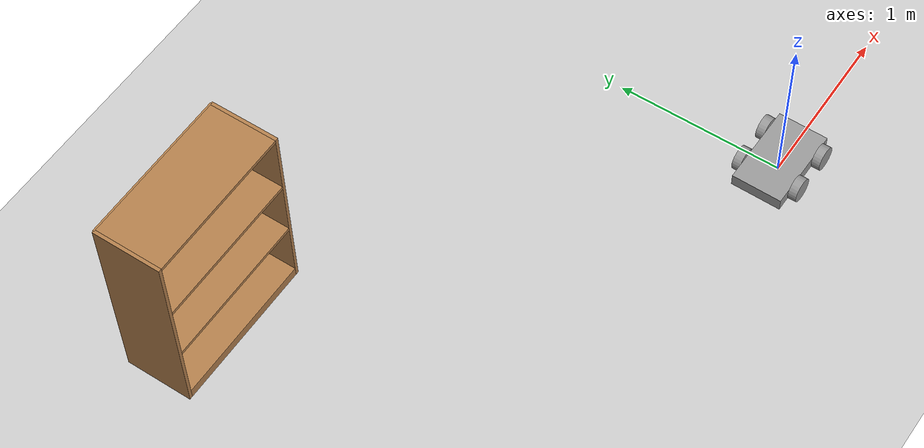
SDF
<sdf version="1.6">
 <world name="default">
  <model name="ground_plane">
   <static>1</static>
   <link name="link">
    <collision name="collision">
     <geometry><plane><normal>0 0 1</normal><size>100 100</size></plane></geometry>
     <surface><friction><ode><mu>100</mu><mu2>50</mu2></ode></friction></surface>
    </collision>
    <visual name="visual">
     <cast_shadows>0</cast_shadows>
     <geometry><plane><normal>0 0 1</normal><size>100 100</size></plane></geometry>
     <material>
      <script><uri>file://media/materials/scripts/gazebo.material</uri><name>Gazebo/Grey</name></script>
     </material>
    </visual>
   </link>
  </model>
  <model name="fourwheelrobot">
   <link name="link_0">
    <pose>-0.025 0.182607 0.07 0 -0 0</pose>
    <inertial>
     <mass>1</mass>
     <inertia>
      <ixx>0.166667</ixx>
      <ixy>0</ixy>
      <ixz>0</ixz>
      <iyy>0.166667</iyy>
      <iyz>0</iyz>
      <izz>0.166667</izz>
     </inertia>
    </inertial>
    <visual name="visual">
     <geometry><box><size>0.5 0.3 0.075</size></box></geometry>
     <material>
      <lighting>1</lighting>
      <script><uri>file://media/materials/scripts/gazebo.material</uri><name>Gazebo/Grey</name></script>
      <shader type="pixel"><normal_map>__default__</normal_map></shader>
      <ambient>0.3 0.3 0.3 1</ambient>
      <diffuse>0.7 0.7 0.7 1</diffuse>
      <specular>0.01 0.01 0.01 1</specular>
      <emissive>0 0 0 1</emissive>
     </material>
    </visual>
    <collision name="collision">
     <geometry><box><size>0.5 0.3 0.075</size></box></geometry>
     <surface>
      <friction>
       <ode><mu>1</mu><mu2>1</mu2><fdir1>0 0 0</fdir1><slip1>0</slip1><slip2>0</slip2></ode>
       <torsional>
        <coefficient>1</coefficient>
        <patch_radius>0</patch_radius>
        <surface_radius>0</surface_radius>
        <use_patch_radius>1</use_patch_radius>
        <ode><slip>0</slip></ode>
       </torsional>
      </friction>
      <bounce><restitution_coefficient>0</restitution_coefficient><threshold>1e+06</threshold></bounce>
      <contact>
       <collide_without_contact>0</collide_without_contact>
       <collide_without_contact_bitmask>1</collide_without_contact_bitmask>
       <collide_bitmask>1</collide_bitmask>
       <ode>
        <soft_cfm>0</soft_cfm>
        <soft_erp>0.2</soft_erp>
        <kp>1e+13</kp>
        <kd>1</kd>
        <max_vel>0.01</max_vel>
        <min_depth>0</min_depth>
       </ode>
       <bullet>
        <split_impulse>1</split_impulse>
        <split_impulse_penetration_threshold>-0.01</split_impulse_penetration_threshold>
        <soft_cfm>0</soft_cfm>
        <soft_erp>0.2</soft_erp>
        <kp>1e+13</kp>
        <kd>1</kd>
       </bullet>
      </contact>
     </surface>
    </collision>
   </link>
   <link name="link_1">
    <pose>0.125 0.007594 0.07 1.5707 -0 0</pose>
    <inertial>
     <mass>1</mass>
     <inertia><ixx>0.145833</ixx><ixy>0</ixy><ixz>0</ixz><iyy>0.145833</iyy><iyz>0</iyz><izz>0.125</izz></inertia>
    </inertial>
    <visual name="visual">
     <geometry><cylinder><radius>0.07</radius><length>0.05</length></cylinder></geometry>
     <material>
      <lighting>1</lighting>
      <script><uri>file://media/materials/scripts/gazebo.material</uri><name>Gazebo/Grey</name></script>
      <shader type="pixel"><normal_map>__default__</normal_map></shader>
      <ambient>0.3 0.3 0.3 1</ambient>
      <diffuse>0.7 0.7 0.7 1</diffuse>
      <specular>0.01 0.01 0.01 1</specular>
      <emissive>0 0 0 1</emissive>
     </material>
    </visual>
    <collision name="collision">
     <geometry><cylinder><radius>0.07</radius><length>0.05</length></cylinder></geometry>
     <surface>
      <friction>
       <ode><mu>1</mu><mu2>1</mu2><fdir1>0 0 0</fdir1><slip1>0</slip1><slip2>0</slip2></ode>
       <torsional>
        <coefficient>1</coefficient>
        <patch_radius>0</patch_radius>
        <surface_radius>0</surface_radius>
        <use_patch_radius>1</use_patch_radius>
        <ode><slip>0</slip></ode>
       </torsional>
      </friction>
      <bounce><restitution_coefficient>0</restitution_coefficient><threshold>1e+06</threshold></bounce>
      <contact>
       <collide_without_contact>0</collide_without_contact>
       <collide_without_contact_bitmask>1</collide_without_contact_bitmask>
       <collide_bitmask>1</collide_bitmask>
       <ode>
        <soft_cfm>0</soft_cfm>
        <soft_erp>0.2</soft_erp>
        <kp>1e+13</kp>
        <kd>1</kd>
        <max_vel>0.01</max_vel>
        <min_depth>0</min_depth>
       </ode>
       <bullet>
        <split_impulse>1</split_impulse>
        <split_impulse_penetration_threshold>-0.01</split_impulse_penetration_threshold>
        <soft_cfm>0</soft_cfm>
        <soft_erp>0.2</soft_erp>
        <kp>1e+13</kp>
        <kd>1</kd>
       </bullet>
      </contact>
     </surface>
    </collision>
   </link>
   <link name="link_1_clone">
    <pose>-0.125 0.0076 0.07 1.5707 -0 0</pose>
    <inertial>
     <mass>1</mass>
     <inertia><ixx>0.145833</ixx><ixy>0</ixy><ixz>0</ixz><iyy>0.145833</iyy><iyz>0</iyz><izz>0.125</izz></inertia>
    </inertial>
    <visual name="visual">
     <geometry><cylinder><radius>0.07</radius><length>0.05</length></cylinder></geometry>
     <material>
      <lighting>1</lighting>
      <script><uri>file://media/materials/scripts/gazebo.material</uri><name>Gazebo/Grey</name></script>
      <shader type="pixel"><normal_map>__default__</normal_map></shader>
      <ambient>0.3 0.3 0.3 1</ambient>
      <diffuse>0.7 0.7 0.7 1</diffuse>
      <specular>0.01 0.01 0.01 1</specular>
      <emissive>0 0 0 1</emissive>
     </material>
    </visual>
    <collision name="collision">
     <geometry><cylinder><radius>0.07</radius><length>0.05</length></cylinder></geometry>
     <surface>
      <friction>
       <ode><mu>1</mu><mu2>1</mu2><fdir1>0 0 0</fdir1><slip1>0</slip1><slip2>0</slip2></ode>
       <torsional>
        <coefficient>1</coefficient>
        <patch_radius>0</patch_radius>
        <surface_radius>0</surface_radius>
        <use_patch_radius>1</use_patch_radius>
        <ode><slip>0</slip></ode>
       </torsional>
      </friction>
      <bounce><restitution_coefficient>0</restitution_coefficient><threshold>1e+06</threshold></bounce>
      <contact>
       <collide_without_contact>0</collide_without_contact>
       <collide_without_contact_bitmask>1</collide_without_contact_bitmask>
       <collide_bitmask>1</collide_bitmask>
       <ode>
        <soft_cfm>0</soft_cfm>
        <soft_erp>0.2</soft_erp>
        <kp>1e+13</kp>
        <kd>1</kd>
        <max_vel>0.01</max_vel>
        <min_depth>0</min_depth>
       </ode>
       <bullet>
        <split_impulse>1</split_impulse>
        <split_impulse_penetration_threshold>-0.01</split_impulse_penetration_threshold>
        <soft_cfm>0</soft_cfm>
        <soft_erp>0.2</soft_erp>
        <kp>1e+13</kp>
        <kd>1</kd>
       </bullet>
      </contact>
     </surface>
    </collision>
   </link>
   <link name="link_1_clone_0">
    <pose>0.125 0.357614 0.07 1.5707 -0 0</pose>
    <inertial>
     <mass>1</mass>
     <inertia><ixx>0.145833</ixx><ixy>0</ixy><ixz>0</ixz><iyy>0.145833</iyy><iyz>0</iyz><izz>0.125</izz></inertia>
    </inertial>
    <visual name="visual">
     <geometry><cylinder><radius>0.07</radius><length>0.05</length></cylinder></geometry>
     <material>
      <lighting>1</lighting>
      <script><uri>file://media/materials/scripts/gazebo.material</uri><name>Gazebo/Grey</name></script>
      <shader type="pixel"><normal_map>__default__</normal_map></shader>
      <ambient>0.3 0.3 0.3 1</ambient>
      <diffuse>0.7 0.7 0.7 1</diffuse>
      <specular>0.01 0.01 0.01 1</specular>
      <emissive>0 0 0 1</emissive>
     </material>
    </visual>
    <collision name="collision">
     <geometry><cylinder><radius>0.07</radius><length>0.05</length></cylinder></geometry>
     <surface>
      <friction>
       <ode><mu>1</mu><mu2>1</mu2><fdir1>0 0 0</fdir1><slip1>0</slip1><slip2>0</slip2></ode>
       <torsional>
        <coefficient>1</coefficient>
        <patch_radius>0</patch_radius>
        <surface_radius>0</surface_radius>
        <use_patch_radius>1</use_patch_radius>
        <ode><slip>0</slip></ode>
       </torsional>
      </friction>
      <bounce><restitution_coefficient>0</restitution_coefficient><threshold>1e+06</threshold></bounce>
      <contact>
       <collide_without_contact>0</collide_without_contact>
       <collide_without_contact_bitmask>1</collide_without_contact_bitmask>
       <collide_bitmask>1</collide_bitmask>
       <ode>
        <soft_cfm>0</soft_cfm>
        <soft_erp>0.2</soft_erp>
        <kp>1e+13</kp>
        <kd>1</kd>
        <max_vel>0.01</max_vel>
        <min_depth>0</min_depth>
       </ode>
       <bullet>
        <split_impulse>1</split_impulse>
        <split_impulse_penetration_threshold>-0.01</split_impulse_penetration_threshold>
        <soft_cfm>0</soft_cfm>
        <soft_erp>0.2</soft_erp>
        <kp>1e+13</kp>
        <kd>1</kd>
       </bullet>
      </contact>
     </surface>
    </collision>
   </link>
   <link name="link_1_clone_1">
    <pose>-0.125 0.357614 0.07 1.5707 -0 0</pose>
    <inertial>
     <mass>1</mass>
     <inertia><ixx>0.145833</ixx><ixy>0</ixy><ixz>0</ixz><iyy>0.145833</iyy><iyz>0</iyz><izz>0.125</izz></inertia>
    </inertial>
    <visual name="visual">
     <geometry><cylinder><radius>0.07</radius><length>0.05</length></cylinder></geometry>
     <material>
      <lighting>1</lighting>
      <script><uri>file://media/materials/scripts/gazebo.material</uri><name>Gazebo/Grey</name></script>
      <shader type="pixel"><normal_map>__default__</normal_map></shader>
      <ambient>0.3 0.3 0.3 1</ambient>
      <diffuse>0.7 0.7 0.7 1</diffuse>
      <specular>0.01 0.01 0.01 1</specular>
      <emissive>0 0 0 1</emissive>
     </material>
    </visual>
    <collision name="collision">
     <geometry><cylinder><radius>0.07</radius><length>0.05</length></cylinder></geometry>
     <surface>
      <friction>
       <ode><mu>1</mu><mu2>1</mu2><fdir1>0 0 0</fdir1><slip1>0</slip1><slip2>0</slip2></ode>
       <torsional>
        <coefficient>1</coefficient>
        <patch_radius>0</patch_radius>
        <surface_radius>0</surface_radius>
        <use_patch_radius>1</use_patch_radius>
        <ode><slip>0</slip></ode>
       </torsional>
      </friction>
      <bounce><restitution_coefficient>0</restitution_coefficient><threshold>1e+06</threshold></bounce>
      <contact>
       <collide_without_contact>0</collide_without_contact>
       <collide_without_contact_bitmask>1</collide_without_contact_bitmask>
       <collide_bitmask>1</collide_bitmask>
       <ode>
        <soft_cfm>0</soft_cfm>
        <soft_erp>0.2</soft_erp>
        <kp>1e+13</kp>
        <kd>1</kd>
        <max_vel>0.01</max_vel>
        <min_depth>0</min_depth>
       </ode>
       <bullet>
        <split_impulse>1</split_impulse>
        <split_impulse_penetration_threshold>-0.01</split_impulse_penetration_threshold>
        <soft_cfm>0</soft_cfm>
        <soft_erp>0.2</soft_erp>
        <kp>1e+13</kp>
        <kd>1</kd>
       </bullet>
      </contact>
     </surface>
    </collision>
   </link>
   <joint name="link_0_JOINT_0" type="revolute">
    <parent>link_0</parent>
    <child>link_1</child>
    <axis>
     <xyz>0 0 1</xyz>
     <use_parent_model_frame>0</use_parent_model_frame>
     <limit>
      <lower>-1.79769e+308</lower>
      <upper>1.79769e+308</upper>
      <effort>-1</effort>
      <velocity>-1</velocity>
     </limit>
     <dynamics>
      <spring_reference>0</spring_reference>
      <spring_stiffness>0</spring_stiffness>
      <damping>0</damping>
      <friction>0</friction>
     </dynamics>
    </axis>
    <physics>
     <ode><limit><cfm>0</cfm><erp>0.2</erp></limit><suspension><cfm>0</cfm><erp>0.2</erp></suspension></ode>
    </physics>
   </joint>
   <joint name="link_0_JOINT_1" type="revolute">
    <parent>link_0</parent>
    <child>link_1_clone</child>
    <axis>
     <xyz>0 0 1</xyz>
     <use_parent_model_frame>0</use_parent_model_frame>
     <limit>
      <lower>-1.79769e+308</lower>
      <upper>1.79769e+308</upper>
      <effort>-1</effort>
      <velocity>-1</velocity>
     </limit>
     <dynamics>
      <spring_reference>0</spring_reference>
      <spring_stiffness>0</spring_stiffness>
      <damping>0</damping>
      <friction>0</friction>
     </dynamics>
    </axis>
    <physics>
     <ode><limit><cfm>0</cfm><erp>0.2</erp></limit><suspension><cfm>0</cfm><erp>0.2</erp></suspension></ode>
    </physics>
   </joint>
   <joint name="link_0_JOINT_2" type="revolute">
    <parent>link_0</parent>
    <child>link_1_clone_0</child>
    <axis>
     <xyz>0 0 1</xyz>
     <use_parent_model_frame>0</use_parent_model_frame>
     <limit>
      <lower>-1.79769e+308</lower>
      <upper>1.79769e+308</upper>
      <effort>-1</effort>
      <velocity>-1</velocity>
     </limit>
     <dynamics>
      <spring_reference>0</spring_reference>
      <spring_stiffness>0</spring_stiffness>
      <damping>0</damping>
      <friction>0</friction>
     </dynamics>
    </axis>
    <physics>
     <ode><limit><cfm>0</cfm><erp>0.2</erp></limit><suspension><cfm>0</cfm><erp>0.2</erp></suspension></ode>
    </physics>
   </joint>
   <joint name="link_0_JOINT_3" type="revolute">
    <parent>link_0</parent>
    <child>link_1_clone_1</child>
    <axis>
     <xyz>0 0 1</xyz>
     <use_parent_model_frame>0</use_parent_model_frame>
     <limit>
      <lower>-1.79769e+308</lower>
      <upper>1.79769e+308</upper>
      <effort>-1</effort>
      <velocity>-1</velocity>
     </limit>
     <dynamics>
      <spring_reference>0</spring_reference>
      <spring_stiffness>0</spring_stiffness>
      <damping>0</damping>
      <friction>0</friction>
     </dynamics>
    </axis>
    <physics>
     <ode><limit><cfm>0</cfm><erp>0.2</erp></limit><suspension><cfm>0</cfm><erp>0.2</erp></suspension></ode>
    </physics>
   </joint>
   <static>0</static>
   <pose>0.023886 -0.184254 1e-06 5e-06 -7e-06 -0.01228</pose>
  </model>
  <model name="bookshelf">
   <static>1</static>
   <link name="link">
    <inertial><mass>1</mass></inertial>
    <collision name="back">
     <pose>0 0.005 0.6 0 -0 0</pose>
     <geometry><box><size>0.9 0.01 1.2</size></box></geometry>
    </collision>
    <visual name="visual1">
     <pose>0 0.005 0.6 0 -0 0</pose>
     <geometry><box><size>0.9 0.01 1.2</size></box></geometry>
     <material>
      <script><uri>file://media/materials/scripts/gazebo.material</uri><name>Gazebo/Wood</name></script>
     </material>
    </visual>
    <collision name="left_side">
     <pose>0.45 -0.195 0.6 0 -0 0</pose>
     <geometry><box><size>0.02 0.4 1.2</size></box></geometry>
    </collision>
    <visual name="visual2">
     <pose>0.45 -0.195 0.6 0 -0 0</pose>
     <geometry><box><size>0.02 0.4 1.2</size></box></geometry>
     <material>
      <script><uri>file://media/materials/scripts/gazebo.material</uri><name>Gazebo/Wood</name></script>
     </material>
    </visual>
    <collision name="right_side">
     <pose>-0.45 -0.195 0.6 0 -0 0</pose>
     <geometry><box><size>0.02 0.4 1.2</size></box></geometry>
    </collision>
    <visual name="visual3">
     <pose>-0.45 -0.195 0.6 0 -0 0</pose>
     <geometry><box><size>0.02 0.4 1.2</size></box></geometry>
     <material>
      <script><uri>file://media/materials/scripts/gazebo.material</uri><name>Gazebo/Wood</name></script>
     </material>
    </visual>
    <collision name="bottom">
     <pose>0 -0.195 0.03 0 -0 0</pose>
     <geometry><box><size>0.88 0.4 0.06</size></box></geometry>
    </collision>
    <visual name="visual4">
     <pose>0 -0.195 0.03 0 -0 0</pose>
     <geometry><box><size>0.88 0.4 0.06</size></box></geometry>
     <material>
      <script><uri>file://media/materials/scripts/gazebo.material</uri><name>Gazebo/Wood</name></script>
     </material>
    </visual>
    <collision name="top">
     <pose>0 -0.195 1.19 0 -0 0</pose>
     <geometry><box><size>0.88 0.4 0.02</size></box></geometry>
    </collision>
    <visual name="visual5">
     <pose>0 -0.195 1.19 0 -0 0</pose>
     <geometry><box><size>0.88 0.4 0.02</size></box></geometry>
     <material>
      <script><uri>file://media/materials/scripts/gazebo.material</uri><name>Gazebo/Wood</name></script>
     </material>
    </visual>
    <collision name="low_shelf">
     <pose>0 -0.195 0.43 0 -0 0</pose>
     <geometry><box><size>0.88 0.4 0.02</size></box></geometry>
    </collision>
    <visual name="visual6">
     <pose>0 -0.195 0.43 0 -0 0</pose>
     <geometry><box><size>0.88 0.4 0.02</size></box></geometry>
     <material>
      <script><uri>file://media/materials/scripts/gazebo.material</uri><name>Gazebo/Wood</name></script>
     </material>
    </visual>
    <collision name="high_shelf">
     <pose>0 -0.195 0.8 0 -0 0</pose>
     <geometry><box><size>0.88 0.4 0.02</size></box></geometry>
    </collision>
    <visual name="visual7">
     <pose>0 -0.195 0.8 0 -0 0</pose>
     <geometry><box><size>0.88 0.4 0.02</size></box></geometry>
     <material>
      <script><uri>file://media/materials/scripts/gazebo.material</uri><name>Gazebo/Wood</name></script>
     </material>
    </visual>
   </link>
   <pose>-2.43207 2.17288 0 0 -0 0</pose>
  </model>
 </world>
</sdf>
